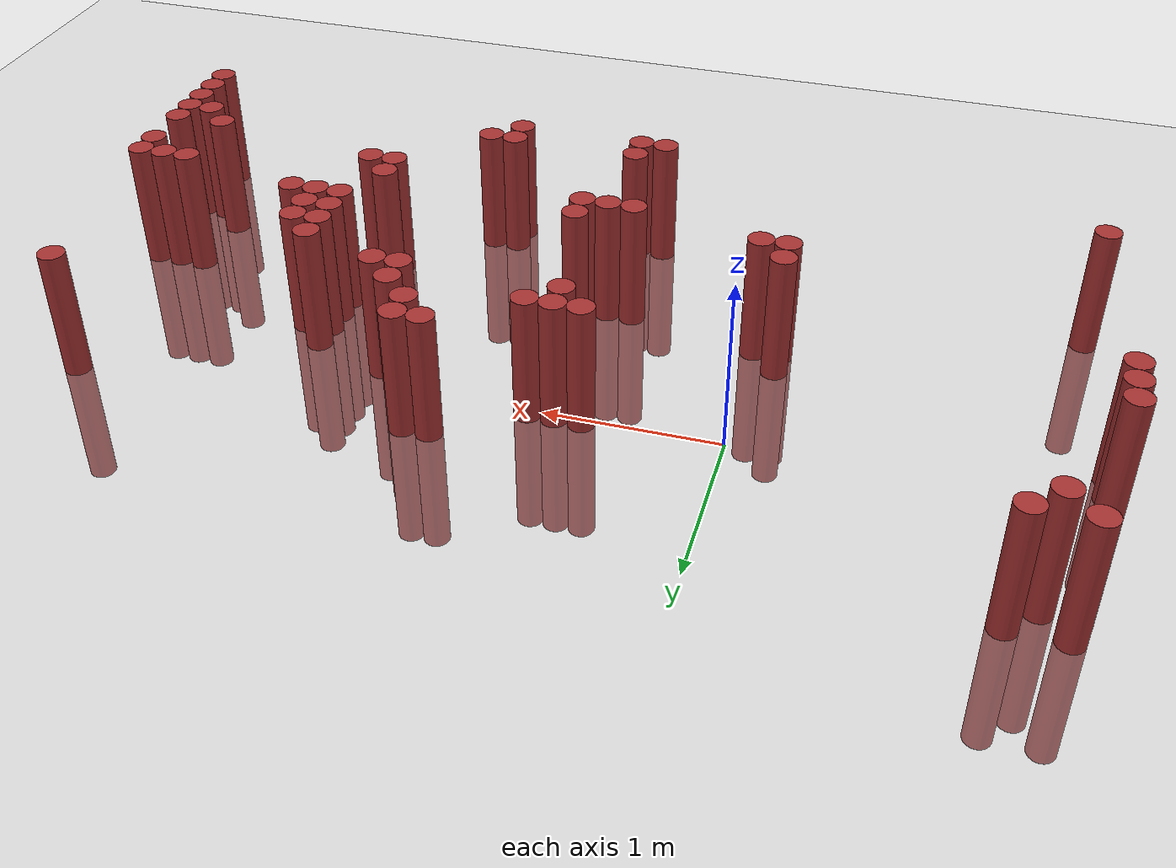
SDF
<sdf version="1.6">
 <world name="default">
  <model name="ground_plane">
   <static>1</static>
   <link name="link">
    <collision name="collision">
     <geometry><plane><normal>0 0 1</normal><size>100 100</size></plane></geometry>
     <surface><friction><ode><mu>100</mu><mu2>50</mu2></ode></friction></surface>
    </collision>
    <visual name="visual">
     <cast_shadows>0</cast_shadows>
     <geometry><plane><normal>0 0 1</normal><size>100 100</size></plane></geometry>
     <material>
      <script><uri>file://media/materials/scripts/gazebo.material</uri><name>Gazebo/Grey</name></script>
     </material>
    </visual>
   </link>
  </model>
  <model name="unit_cylinder_321">
   <static>1</static>
   <pose>-1.925000 -0.275000 0.000000 0.000000 0.000000 0.000000</pose>
   <link name="link">
    <inertial>
     <mass>1</mass>
     <inertia><ixx>0.145833</ixx><ixy>0</ixy><ixz>0</ixz><iyy>0.145833</iyy><iyz>0</iyz><izz>0.125</izz></inertia>
    </inertial>
    <collision name="collision">
     <geometry><cylinder><radius>0.075000</radius><length>1.5</length></cylinder></geometry>
    </collision>
    <visual name="visual">
     <geometry><cylinder><radius>0.075000</radius><length>1.5</length></cylinder></geometry>
     <material>
      <ambient>0.648000 0.192000 0.192000 1</ambient>
      <diffuse>0.648000 0.192000 0.192000 1</diffuse>
     </material>
     <material>
      <script><name>Gazebo/Grey</name><uri>file://media/materials/scripts/gazebo.material</uri></script>
     </material>
    </visual>
   </link>
  </model>
  <model name="unit_cylinder_322">
   <static>1</static>
   <pose>-1.925000 -0.125000 0.000000 0.000000 0.000000 0.000000</pose>
   <link name="link">
    <inertial>
     <mass>1</mass>
     <inertia><ixx>0.145833</ixx><ixy>0</ixy><ixz>0</ixz><iyy>0.145833</iyy><iyz>0</iyz><izz>0.125</izz></inertia>
    </inertial>
    <collision name="collision">
     <geometry><cylinder><radius>0.075000</radius><length>1.5</length></cylinder></geometry>
    </collision>
    <visual name="visual">
     <geometry><cylinder><radius>0.075000</radius><length>1.5</length></cylinder></geometry>
     <material>
      <ambient>0.648000 0.192000 0.192000 1</ambient>
      <diffuse>0.648000 0.192000 0.192000 1</diffuse>
     </material>
     <material>
      <script><name>Gazebo/Grey</name><uri>file://media/materials/scripts/gazebo.material</uri></script>
     </material>
    </visual>
   </link>
  </model>
  <model name="unit_cylinder_323">
   <static>1</static>
   <pose>-1.925000 0.025000 0.000000 0.000000 0.000000 0.000000</pose>
   <link name="link">
    <inertial>
     <mass>1</mass>
     <inertia><ixx>0.145833</ixx><ixy>0</ixy><ixz>0</ixz><iyy>0.145833</iyy><iyz>0</iyz><izz>0.125</izz></inertia>
    </inertial>
    <collision name="collision">
     <geometry><cylinder><radius>0.075000</radius><length>1.5</length></cylinder></geometry>
    </collision>
    <visual name="visual">
     <geometry><cylinder><radius>0.075000</radius><length>1.5</length></cylinder></geometry>
     <material>
      <ambient>0.648000 0.192000 0.192000 1</ambient>
      <diffuse>0.648000 0.192000 0.192000 1</diffuse>
     </material>
     <material>
      <script><name>Gazebo/Grey</name><uri>file://media/materials/scripts/gazebo.material</uri></script>
     </material>
    </visual>
   </link>
  </model>
  <model name="unit_cylinder_327">
   <static>1</static>
   <pose>-1.775000 -1.475000 0.000000 0.000000 0.000000 0.000000</pose>
   <link name="link">
    <inertial>
     <mass>1</mass>
     <inertia><ixx>0.145833</ixx><ixy>0</ixy><ixz>0</ixz><iyy>0.145833</iyy><iyz>0</iyz><izz>0.125</izz></inertia>
    </inertial>
    <collision name="collision">
     <geometry><cylinder><radius>0.075000</radius><length>1.5</length></cylinder></geometry>
    </collision>
    <visual name="visual">
     <geometry><cylinder><radius>0.075000</radius><length>1.5</length></cylinder></geometry>
     <material>
      <ambient>0.648000 0.192000 0.192000 1</ambient>
      <diffuse>0.648000 0.192000 0.192000 1</diffuse>
     </material>
     <material>
      <script><name>Gazebo/Grey</name><uri>file://media/materials/scripts/gazebo.material</uri></script>
     </material>
    </visual>
   </link>
  </model>
  <model name="unit_cylinder_328">
   <static>1</static>
   <pose>-1.775000 0.925000 0.000000 0.000000 0.000000 0.000000</pose>
   <link name="link">
    <inertial>
     <mass>1</mass>
     <inertia><ixx>0.145833</ixx><ixy>0</ixy><ixz>0</ixz><iyy>0.145833</iyy><iyz>0</iyz><izz>0.125</izz></inertia>
    </inertial>
    <collision name="collision">
     <geometry><cylinder><radius>0.075000</radius><length>1.5</length></cylinder></geometry>
    </collision>
    <visual name="visual">
     <geometry><cylinder><radius>0.075000</radius><length>1.5</length></cylinder></geometry>
     <material>
      <ambient>0.648000 0.192000 0.192000 1</ambient>
      <diffuse>0.648000 0.192000 0.192000 1</diffuse>
     </material>
     <material>
      <script><name>Gazebo/Grey</name><uri>file://media/materials/scripts/gazebo.material</uri></script>
     </material>
    </visual>
   </link>
  </model>
  <model name="unit_cylinder_329">
   <static>1</static>
   <pose>-1.625000 0.775000 0.000000 0.000000 0.000000 0.000000</pose>
   <link name="link">
    <inertial>
     <mass>1</mass>
     <inertia><ixx>0.145833</ixx><ixy>0</ixy><ixz>0</ixz><iyy>0.145833</iyy><iyz>0</iyz><izz>0.125</izz></inertia>
    </inertial>
    <collision name="collision">
     <geometry><cylinder><radius>0.075000</radius><length>1.5</length></cylinder></geometry>
    </collision>
    <visual name="visual">
     <geometry><cylinder><radius>0.075000</radius><length>1.5</length></cylinder></geometry>
     <material>
      <ambient>0.648000 0.192000 0.192000 1</ambient>
      <diffuse>0.648000 0.192000 0.192000 1</diffuse>
     </material>
     <material>
      <script><name>Gazebo/Grey</name><uri>file://media/materials/scripts/gazebo.material</uri></script>
     </material>
    </visual>
   </link>
  </model>
  <model name="unit_cylinder_334">
   <static>1</static>
   <pose>-1.475000 0.925000 0.000000 0.000000 0.000000 0.000000</pose>
   <link name="link">
    <inertial>
     <mass>1</mass>
     <inertia><ixx>0.145833</ixx><ixy>0</ixy><ixz>0</ixz><iyy>0.145833</iyy><iyz>0</iyz><izz>0.125</izz></inertia>
    </inertial>
    <collision name="collision">
     <geometry><cylinder><radius>0.075000</radius><length>1.5</length></cylinder></geometry>
    </collision>
    <visual name="visual">
     <geometry><cylinder><radius>0.075000</radius><length>1.5</length></cylinder></geometry>
     <material>
      <ambient>0.648000 0.192000 0.192000 1</ambient>
      <diffuse>0.648000 0.192000 0.192000 1</diffuse>
     </material>
     <material>
      <script><name>Gazebo/Grey</name><uri>file://media/materials/scripts/gazebo.material</uri></script>
     </material>
    </visual>
   </link>
  </model>
  <model name="unit_cylinder_373">
   <static>1</static>
   <pose>-0.125000 -0.875000 0.000000 0.000000 0.000000 0.000000</pose>
   <link name="link">
    <inertial>
     <mass>1</mass>
     <inertia><ixx>0.145833</ixx><ixy>0</ixy><ixz>0</ixz><iyy>0.145833</iyy><iyz>0</iyz><izz>0.125</izz></inertia>
    </inertial>
    <collision name="collision">
     <geometry><cylinder><radius>0.075000</radius><length>1.5</length></cylinder></geometry>
    </collision>
    <visual name="visual">
     <geometry><cylinder><radius>0.075000</radius><length>1.5</length></cylinder></geometry>
     <material>
      <ambient>0.648000 0.192000 0.192000 1</ambient>
      <diffuse>0.648000 0.192000 0.192000 1</diffuse>
     </material>
     <material>
      <script><name>Gazebo/Grey</name><uri>file://media/materials/scripts/gazebo.material</uri></script>
     </material>
    </visual>
   </link>
  </model>
  <model name="unit_cylinder_374">
   <static>1</static>
   <pose>-0.125000 -0.725000 0.000000 0.000000 0.000000 0.000000</pose>
   <link name="link">
    <inertial>
     <mass>1</mass>
     <inertia><ixx>0.145833</ixx><ixy>0</ixy><ixz>0</ixz><iyy>0.145833</iyy><iyz>0</iyz><izz>0.125</izz></inertia>
    </inertial>
    <collision name="collision">
     <geometry><cylinder><radius>0.075000</radius><length>1.5</length></cylinder></geometry>
    </collision>
    <visual name="visual">
     <geometry><cylinder><radius>0.075000</radius><length>1.5</length></cylinder></geometry>
     <material>
      <ambient>0.648000 0.192000 0.192000 1</ambient>
      <diffuse>0.648000 0.192000 0.192000 1</diffuse>
     </material>
     <material>
      <script><name>Gazebo/Grey</name><uri>file://media/materials/scripts/gazebo.material</uri></script>
     </material>
    </visual>
   </link>
  </model>
  <model name="unit_cylinder_375">
   <static>1</static>
   <pose>0.025000 -0.875000 0.000000 0.000000 0.000000 0.000000</pose>
   <link name="link">
    <inertial>
     <mass>1</mass>
     <inertia><ixx>0.145833</ixx><ixy>0</ixy><ixz>0</ixz><iyy>0.145833</iyy><iyz>0</iyz><izz>0.125</izz></inertia>
    </inertial>
    <collision name="collision">
     <geometry><cylinder><radius>0.075000</radius><length>1.5</length></cylinder></geometry>
    </collision>
    <visual name="visual">
     <geometry><cylinder><radius>0.075000</radius><length>1.5</length></cylinder></geometry>
     <material>
      <ambient>0.648000 0.192000 0.192000 1</ambient>
      <diffuse>0.648000 0.192000 0.192000 1</diffuse>
     </material>
     <material>
      <script><name>Gazebo/Grey</name><uri>file://media/materials/scripts/gazebo.material</uri></script>
     </material>
    </visual>
   </link>
  </model>
  <model name="unit_cylinder_386">
   <static>1</static>
   <pose>0.775000 -1.775000 0.000000 0.000000 0.000000 0.000000</pose>
   <link name="link">
    <inertial>
     <mass>1</mass>
     <inertia><ixx>0.145833</ixx><ixy>0</ixy><ixz>0</ixz><iyy>0.145833</iyy><iyz>0</iyz><izz>0.125</izz></inertia>
    </inertial>
    <collision name="collision">
     <geometry><cylinder><radius>0.075000</radius><length>1.5</length></cylinder></geometry>
    </collision>
    <visual name="visual">
     <geometry><cylinder><radius>0.075000</radius><length>1.5</length></cylinder></geometry>
     <material>
      <ambient>0.648000 0.192000 0.192000 1</ambient>
      <diffuse>0.648000 0.192000 0.192000 1</diffuse>
     </material>
     <material>
      <script><name>Gazebo/Grey</name><uri>file://media/materials/scripts/gazebo.material</uri></script>
     </material>
    </visual>
   </link>
  </model>
  <model name="unit_cylinder_387">
   <static>1</static>
   <pose>0.775000 -1.025000 0.000000 0.000000 0.000000 0.000000</pose>
   <link name="link">
    <inertial>
     <mass>1</mass>
     <inertia><ixx>0.145833</ixx><ixy>0</ixy><ixz>0</ixz><iyy>0.145833</iyy><iyz>0</iyz><izz>0.125</izz></inertia>
    </inertial>
    <collision name="collision">
     <geometry><cylinder><radius>0.075000</radius><length>1.5</length></cylinder></geometry>
    </collision>
    <visual name="visual">
     <geometry><cylinder><radius>0.075000</radius><length>1.5</length></cylinder></geometry>
     <material>
      <ambient>0.648000 0.192000 0.192000 1</ambient>
      <diffuse>0.648000 0.192000 0.192000 1</diffuse>
     </material>
     <material>
      <script><name>Gazebo/Grey</name><uri>file://media/materials/scripts/gazebo.material</uri></script>
     </material>
    </visual>
   </link>
  </model>
  <model name="unit_cylinder_388">
   <static>1</static>
   <pose>0.775000 0.025000 0.000000 0.000000 0.000000 0.000000</pose>
   <link name="link">
    <inertial>
     <mass>1</mass>
     <inertia><ixx>0.145833</ixx><ixy>0</ixy><ixz>0</ixz><iyy>0.145833</iyy><iyz>0</iyz><izz>0.125</izz></inertia>
    </inertial>
    <collision name="collision">
     <geometry><cylinder><radius>0.075000</radius><length>1.5</length></cylinder></geometry>
    </collision>
    <visual name="visual">
     <geometry><cylinder><radius>0.075000</radius><length>1.5</length></cylinder></geometry>
     <material>
      <ambient>0.648000 0.192000 0.192000 1</ambient>
      <diffuse>0.648000 0.192000 0.192000 1</diffuse>
     </material>
     <material>
      <script><name>Gazebo/Grey</name><uri>file://media/materials/scripts/gazebo.material</uri></script>
     </material>
    </visual>
   </link>
  </model>
  <model name="unit_cylinder_390">
   <static>1</static>
   <pose>0.925000 -1.775000 0.000000 0.000000 0.000000 0.000000</pose>
   <link name="link">
    <inertial>
     <mass>1</mass>
     <inertia><ixx>0.145833</ixx><ixy>0</ixy><ixz>0</ixz><iyy>0.145833</iyy><iyz>0</iyz><izz>0.125</izz></inertia>
    </inertial>
    <collision name="collision">
     <geometry><cylinder><radius>0.075000</radius><length>1.5</length></cylinder></geometry>
    </collision>
    <visual name="visual">
     <geometry><cylinder><radius>0.075000</radius><length>1.5</length></cylinder></geometry>
     <material>
      <ambient>0.648000 0.192000 0.192000 1</ambient>
      <diffuse>0.648000 0.192000 0.192000 1</diffuse>
     </material>
     <material>
      <script><name>Gazebo/Grey</name><uri>file://media/materials/scripts/gazebo.material</uri></script>
     </material>
    </visual>
   </link>
  </model>
  <model name="unit_cylinder_391">
   <static>1</static>
   <pose>0.925000 -1.625000 0.000000 0.000000 0.000000 0.000000</pose>
   <link name="link">
    <inertial>
     <mass>1</mass>
     <inertia><ixx>0.145833</ixx><ixy>0</ixy><ixz>0</ixz><iyy>0.145833</iyy><iyz>0</iyz><izz>0.125</izz></inertia>
    </inertial>
    <collision name="collision">
     <geometry><cylinder><radius>0.075000</radius><length>1.5</length></cylinder></geometry>
    </collision>
    <visual name="visual">
     <geometry><cylinder><radius>0.075000</radius><length>1.5</length></cylinder></geometry>
     <material>
      <ambient>0.648000 0.192000 0.192000 1</ambient>
      <diffuse>0.648000 0.192000 0.192000 1</diffuse>
     </material>
     <material>
      <script><name>Gazebo/Grey</name><uri>file://media/materials/scripts/gazebo.material</uri></script>
     </material>
    </visual>
   </link>
  </model>
  <model name="unit_cylinder_392">
   <static>1</static>
   <pose>0.925000 -1.025000 0.000000 0.000000 0.000000 0.000000</pose>
   <link name="link">
    <inertial>
     <mass>1</mass>
     <inertia><ixx>0.145833</ixx><ixy>0</ixy><ixz>0</ixz><iyy>0.145833</iyy><iyz>0</iyz><izz>0.125</izz></inertia>
    </inertial>
    <collision name="collision">
     <geometry><cylinder><radius>0.075000</radius><length>1.5</length></cylinder></geometry>
    </collision>
    <visual name="visual">
     <geometry><cylinder><radius>0.075000</radius><length>1.5</length></cylinder></geometry>
     <material>
      <ambient>0.648000 0.192000 0.192000 1</ambient>
      <diffuse>0.648000 0.192000 0.192000 1</diffuse>
     </material>
     <material>
      <script><name>Gazebo/Grey</name><uri>file://media/materials/scripts/gazebo.material</uri></script>
     </material>
    </visual>
   </link>
  </model>
  <model name="unit_cylinder_393">
   <static>1</static>
   <pose>0.925000 -0.125000 0.000000 0.000000 0.000000 0.000000</pose>
   <link name="link">
    <inertial>
     <mass>1</mass>
     <inertia><ixx>0.145833</ixx><ixy>0</ixy><ixz>0</ixz><iyy>0.145833</iyy><iyz>0</iyz><izz>0.125</izz></inertia>
    </inertial>
    <collision name="collision">
     <geometry><cylinder><radius>0.075000</radius><length>1.5</length></cylinder></geometry>
    </collision>
    <visual name="visual">
     <geometry><cylinder><radius>0.075000</radius><length>1.5</length></cylinder></geometry>
     <material>
      <ambient>0.648000 0.192000 0.192000 1</ambient>
      <diffuse>0.648000 0.192000 0.192000 1</diffuse>
     </material>
     <material>
      <script><name>Gazebo/Grey</name><uri>file://media/materials/scripts/gazebo.material</uri></script>
     </material>
    </visual>
   </link>
  </model>
  <model name="unit_cylinder_394">
   <static>1</static>
   <pose>0.925000 0.025000 0.000000 0.000000 0.000000 0.000000</pose>
   <link name="link">
    <inertial>
     <mass>1</mass>
     <inertia><ixx>0.145833</ixx><ixy>0</ixy><ixz>0</ixz><iyy>0.145833</iyy><iyz>0</iyz><izz>0.125</izz></inertia>
    </inertial>
    <collision name="collision">
     <geometry><cylinder><radius>0.075000</radius><length>1.5</length></cylinder></geometry>
    </collision>
    <visual name="visual">
     <geometry><cylinder><radius>0.075000</radius><length>1.5</length></cylinder></geometry>
     <material>
      <ambient>0.648000 0.192000 0.192000 1</ambient>
      <diffuse>0.648000 0.192000 0.192000 1</diffuse>
     </material>
     <material>
      <script><name>Gazebo/Grey</name><uri>file://media/materials/scripts/gazebo.material</uri></script>
     </material>
    </visual>
   </link>
  </model>
  <model name="unit_cylinder_395">
   <static>1</static>
   <pose>1.075000 -1.025000 0.000000 0.000000 0.000000 0.000000</pose>
   <link name="link">
    <inertial>
     <mass>1</mass>
     <inertia><ixx>0.145833</ixx><ixy>0</ixy><ixz>0</ixz><iyy>0.145833</iyy><iyz>0</iyz><izz>0.125</izz></inertia>
    </inertial>
    <collision name="collision">
     <geometry><cylinder><radius>0.075000</radius><length>1.5</length></cylinder></geometry>
    </collision>
    <visual name="visual">
     <geometry><cylinder><radius>0.075000</radius><length>1.5</length></cylinder></geometry>
     <material>
      <ambient>0.648000 0.192000 0.192000 1</ambient>
      <diffuse>0.648000 0.192000 0.192000 1</diffuse>
     </material>
     <material>
      <script><name>Gazebo/Grey</name><uri>file://media/materials/scripts/gazebo.material</uri></script>
     </material>
    </visual>
   </link>
  </model>
  <model name="unit_cylinder_396">
   <static>1</static>
   <pose>1.075000 -0.875000 0.000000 0.000000 0.000000 0.000000</pose>
   <link name="link">
    <inertial>
     <mass>1</mass>
     <inertia><ixx>0.145833</ixx><ixy>0</ixy><ixz>0</ixz><iyy>0.145833</iyy><iyz>0</iyz><izz>0.125</izz></inertia>
    </inertial>
    <collision name="collision">
     <geometry><cylinder><radius>0.075000</radius><length>1.5</length></cylinder></geometry>
    </collision>
    <visual name="visual">
     <geometry><cylinder><radius>0.075000</radius><length>1.5</length></cylinder></geometry>
     <material>
      <ambient>0.648000 0.192000 0.192000 1</ambient>
      <diffuse>0.648000 0.192000 0.192000 1</diffuse>
     </material>
     <material>
      <script><name>Gazebo/Grey</name><uri>file://media/materials/scripts/gazebo.material</uri></script>
     </material>
    </visual>
   </link>
  </model>
  <model name="unit_cylinder_397">
   <static>1</static>
   <pose>1.075000 0.025000 0.000000 0.000000 0.000000 0.000000</pose>
   <link name="link">
    <inertial>
     <mass>1</mass>
     <inertia><ixx>0.145833</ixx><ixy>0</ixy><ixz>0</ixz><iyy>0.145833</iyy><iyz>0</iyz><izz>0.125</izz></inertia>
    </inertial>
    <collision name="collision">
     <geometry><cylinder><radius>0.075000</radius><length>1.5</length></cylinder></geometry>
    </collision>
    <visual name="visual">
     <geometry><cylinder><radius>0.075000</radius><length>1.5</length></cylinder></geometry>
     <material>
      <ambient>0.648000 0.192000 0.192000 1</ambient>
      <diffuse>0.648000 0.192000 0.192000 1</diffuse>
     </material>
     <material>
      <script><name>Gazebo/Grey</name><uri>file://media/materials/scripts/gazebo.material</uri></script>
     </material>
    </visual>
   </link>
  </model>
  <model name="unit_cylinder_399">
   <static>1</static>
   <pose>1.525000 0.325000 0.000000 0.000000 0.000000 0.000000</pose>
   <link name="link">
    <inertial>
     <mass>1</mass>
     <inertia><ixx>0.145833</ixx><ixy>0</ixy><ixz>0</ixz><iyy>0.145833</iyy><iyz>0</iyz><izz>0.125</izz></inertia>
    </inertial>
    <collision name="collision">
     <geometry><cylinder><radius>0.075000</radius><length>1.5</length></cylinder></geometry>
    </collision>
    <visual name="visual">
     <geometry><cylinder><radius>0.075000</radius><length>1.5</length></cylinder></geometry>
     <material>
      <ambient>0.648000 0.192000 0.192000 1</ambient>
      <diffuse>0.648000 0.192000 0.192000 1</diffuse>
     </material>
     <material>
      <script><name>Gazebo/Grey</name><uri>file://media/materials/scripts/gazebo.material</uri></script>
     </material>
    </visual>
   </link>
  </model>
  <model name="unit_cylinder_404">
   <static>1</static>
   <pose>1.675000 -1.775000 0.000000 0.000000 0.000000 0.000000</pose>
   <link name="link">
    <inertial>
     <mass>1</mass>
     <inertia><ixx>0.145833</ixx><ixy>0</ixy><ixz>0</ixz><iyy>0.145833</iyy><iyz>0</iyz><izz>0.125</izz></inertia>
    </inertial>
    <collision name="collision">
     <geometry><cylinder><radius>0.075000</radius><length>1.5</length></cylinder></geometry>
    </collision>
    <visual name="visual">
     <geometry><cylinder><radius>0.075000</radius><length>1.5</length></cylinder></geometry>
     <material>
      <ambient>0.648000 0.192000 0.192000 1</ambient>
      <diffuse>0.648000 0.192000 0.192000 1</diffuse>
     </material>
     <material>
      <script><name>Gazebo/Grey</name><uri>file://media/materials/scripts/gazebo.material</uri></script>
     </material>
    </visual>
   </link>
  </model>
  <model name="unit_cylinder_405">
   <static>1</static>
   <pose>1.675000 -1.625000 0.000000 0.000000 0.000000 0.000000</pose>
   <link name="link">
    <inertial>
     <mass>1</mass>
     <inertia><ixx>0.145833</ixx><ixy>0</ixy><ixz>0</ixz><iyy>0.145833</iyy><iyz>0</iyz><izz>0.125</izz></inertia>
    </inertial>
    <collision name="collision">
     <geometry><cylinder><radius>0.075000</radius><length>1.5</length></cylinder></geometry>
    </collision>
    <visual name="visual">
     <geometry><cylinder><radius>0.075000</radius><length>1.5</length></cylinder></geometry>
     <material>
      <ambient>0.648000 0.192000 0.192000 1</ambient>
      <diffuse>0.648000 0.192000 0.192000 1</diffuse>
     </material>
     <material>
      <script><name>Gazebo/Grey</name><uri>file://media/materials/scripts/gazebo.material</uri></script>
     </material>
    </visual>
   </link>
  </model>
  <model name="unit_cylinder_406">
   <static>1</static>
   <pose>1.675000 0.175000 0.000000 0.000000 0.000000 0.000000</pose>
   <link name="link">
    <inertial>
     <mass>1</mass>
     <inertia><ixx>0.145833</ixx><ixy>0</ixy><ixz>0</ixz><iyy>0.145833</iyy><iyz>0</iyz><izz>0.125</izz></inertia>
    </inertial>
    <collision name="collision">
     <geometry><cylinder><radius>0.075000</radius><length>1.5</length></cylinder></geometry>
    </collision>
    <visual name="visual">
     <geometry><cylinder><radius>0.075000</radius><length>1.5</length></cylinder></geometry>
     <material>
      <ambient>0.648000 0.192000 0.192000 1</ambient>
      <diffuse>0.648000 0.192000 0.192000 1</diffuse>
     </material>
     <material>
      <script><name>Gazebo/Grey</name><uri>file://media/materials/scripts/gazebo.material</uri></script>
     </material>
    </visual>
   </link>
  </model>
  <model name="unit_cylinder_407">
   <static>1</static>
   <pose>1.675000 0.325000 0.000000 0.000000 0.000000 0.000000</pose>
   <link name="link">
    <inertial>
     <mass>1</mass>
     <inertia><ixx>0.145833</ixx><ixy>0</ixy><ixz>0</ixz><iyy>0.145833</iyy><iyz>0</iyz><izz>0.125</izz></inertia>
    </inertial>
    <collision name="collision">
     <geometry><cylinder><radius>0.075000</radius><length>1.5</length></cylinder></geometry>
    </collision>
    <visual name="visual">
     <geometry><cylinder><radius>0.075000</radius><length>1.5</length></cylinder></geometry>
     <material>
      <ambient>0.648000 0.192000 0.192000 1</ambient>
      <diffuse>0.648000 0.192000 0.192000 1</diffuse>
     </material>
     <material>
      <script><name>Gazebo/Grey</name><uri>file://media/materials/scripts/gazebo.material</uri></script>
     </material>
    </visual>
   </link>
  </model>
  <model name="unit_cylinder_410">
   <static>1</static>
   <pose>1.825000 -1.625000 0.000000 0.000000 0.000000 0.000000</pose>
   <link name="link">
    <inertial>
     <mass>1</mass>
     <inertia><ixx>0.145833</ixx><ixy>0</ixy><ixz>0</ixz><iyy>0.145833</iyy><iyz>0</iyz><izz>0.125</izz></inertia>
    </inertial>
    <collision name="collision">
     <geometry><cylinder><radius>0.075000</radius><length>1.5</length></cylinder></geometry>
    </collision>
    <visual name="visual">
     <geometry><cylinder><radius>0.075000</radius><length>1.5</length></cylinder></geometry>
     <material>
      <ambient>0.648000 0.192000 0.192000 1</ambient>
      <diffuse>0.648000 0.192000 0.192000 1</diffuse>
     </material>
     <material>
      <script><name>Gazebo/Grey</name><uri>file://media/materials/scripts/gazebo.material</uri></script>
     </material>
    </visual>
   </link>
  </model>
  <model name="unit_cylinder_411">
   <static>1</static>
   <pose>1.825000 -0.125000 0.000000 0.000000 0.000000 0.000000</pose>
   <link name="link">
    <inertial>
     <mass>1</mass>
     <inertia><ixx>0.145833</ixx><ixy>0</ixy><ixz>0</ixz><iyy>0.145833</iyy><iyz>0</iyz><izz>0.125</izz></inertia>
    </inertial>
    <collision name="collision">
     <geometry><cylinder><radius>0.075000</radius><length>1.5</length></cylinder></geometry>
    </collision>
    <visual name="visual">
     <geometry><cylinder><radius>0.075000</radius><length>1.5</length></cylinder></geometry>
     <material>
      <ambient>0.648000 0.192000 0.192000 1</ambient>
      <diffuse>0.648000 0.192000 0.192000 1</diffuse>
     </material>
     <material>
      <script><name>Gazebo/Grey</name><uri>file://media/materials/scripts/gazebo.material</uri></script>
     </material>
    </visual>
   </link>
  </model>
  <model name="unit_cylinder_412">
   <static>1</static>
   <pose>1.825000 0.025000 0.000000 0.000000 0.000000 0.000000</pose>
   <link name="link">
    <inertial>
     <mass>1</mass>
     <inertia><ixx>0.145833</ixx><ixy>0</ixy><ixz>0</ixz><iyy>0.145833</iyy><iyz>0</iyz><izz>0.125</izz></inertia>
    </inertial>
    <collision name="collision">
     <geometry><cylinder><radius>0.075000</radius><length>1.5</length></cylinder></geometry>
    </collision>
    <visual name="visual">
     <geometry><cylinder><radius>0.075000</radius><length>1.5</length></cylinder></geometry>
     <material>
      <ambient>0.648000 0.192000 0.192000 1</ambient>
      <diffuse>0.648000 0.192000 0.192000 1</diffuse>
     </material>
     <material>
      <script><name>Gazebo/Grey</name><uri>file://media/materials/scripts/gazebo.material</uri></script>
     </material>
    </visual>
   </link>
  </model>
  <model name="unit_cylinder_414">
   <static>1</static>
   <pose>1.975000 -0.125000 0.000000 0.000000 0.000000 0.000000</pose>
   <link name="link">
    <inertial>
     <mass>1</mass>
     <inertia><ixx>0.145833</ixx><ixy>0</ixy><ixz>0</ixz><iyy>0.145833</iyy><iyz>0</iyz><izz>0.125</izz></inertia>
    </inertial>
    <collision name="collision">
     <geometry><cylinder><radius>0.075000</radius><length>1.5</length></cylinder></geometry>
    </collision>
    <visual name="visual">
     <geometry><cylinder><radius>0.075000</radius><length>1.5</length></cylinder></geometry>
     <material>
      <ambient>0.648000 0.192000 0.192000 1</ambient>
      <diffuse>0.648000 0.192000 0.192000 1</diffuse>
     </material>
     <material>
      <script><name>Gazebo/Grey</name><uri>file://media/materials/scripts/gazebo.material</uri></script>
     </material>
    </visual>
   </link>
  </model>
  <model name="unit_cylinder_416">
   <static>1</static>
   <pose>2.275000 -1.175000 0.000000 0.000000 0.000000 0.000000</pose>
   <link name="link">
    <inertial>
     <mass>1</mass>
     <inertia><ixx>0.145833</ixx><ixy>0</ixy><ixz>0</ixz><iyy>0.145833</iyy><iyz>0</iyz><izz>0.125</izz></inertia>
    </inertial>
    <collision name="collision">
     <geometry><cylinder><radius>0.075000</radius><length>1.5</length></cylinder></geometry>
    </collision>
    <visual name="visual">
     <geometry><cylinder><radius>0.075000</radius><length>1.5</length></cylinder></geometry>
     <material>
      <ambient>0.648000 0.192000 0.192000 1</ambient>
      <diffuse>0.648000 0.192000 0.192000 1</diffuse>
     </material>
     <material>
      <script><name>Gazebo/Grey</name><uri>file://media/materials/scripts/gazebo.material</uri></script>
     </material>
    </visual>
   </link>
  </model>
  <model name="unit_cylinder_417">
   <static>1</static>
   <pose>2.275000 -1.025000 0.000000 0.000000 0.000000 0.000000</pose>
   <link name="link">
    <inertial>
     <mass>1</mass>
     <inertia><ixx>0.145833</ixx><ixy>0</ixy><ixz>0</ixz><iyy>0.145833</iyy><iyz>0</iyz><izz>0.125</izz></inertia>
    </inertial>
    <collision name="collision">
     <geometry><cylinder><radius>0.075000</radius><length>1.5</length></cylinder></geometry>
    </collision>
    <visual name="visual">
     <geometry><cylinder><radius>0.075000</radius><length>1.5</length></cylinder></geometry>
     <material>
      <ambient>0.648000 0.192000 0.192000 1</ambient>
      <diffuse>0.648000 0.192000 0.192000 1</diffuse>
     </material>
     <material>
      <script><name>Gazebo/Grey</name><uri>file://media/materials/scripts/gazebo.material</uri></script>
     </material>
    </visual>
   </link>
  </model>
  <model name="unit_cylinder_420">
   <static>1</static>
   <pose>2.425000 -1.175000 0.000000 0.000000 0.000000 0.000000</pose>
   <link name="link">
    <inertial>
     <mass>1</mass>
     <inertia><ixx>0.145833</ixx><ixy>0</ixy><ixz>0</ixz><iyy>0.145833</iyy><iyz>0</iyz><izz>0.125</izz></inertia>
    </inertial>
    <collision name="collision">
     <geometry><cylinder><radius>0.075000</radius><length>1.5</length></cylinder></geometry>
    </collision>
    <visual name="visual">
     <geometry><cylinder><radius>0.075000</radius><length>1.5</length></cylinder></geometry>
     <material>
      <ambient>0.648000 0.192000 0.192000 1</ambient>
      <diffuse>0.648000 0.192000 0.192000 1</diffuse>
     </material>
     <material>
      <script><name>Gazebo/Grey</name><uri>file://media/materials/scripts/gazebo.material</uri></script>
     </material>
    </visual>
   </link>
  </model>
  <model name="unit_cylinder_421">
   <static>1</static>
   <pose>2.425000 -0.725000 0.000000 0.000000 0.000000 0.000000</pose>
   <link name="link">
    <inertial>
     <mass>1</mass>
     <inertia><ixx>0.145833</ixx><ixy>0</ixy><ixz>0</ixz><iyy>0.145833</iyy><iyz>0</iyz><izz>0.125</izz></inertia>
    </inertial>
    <collision name="collision">
     <geometry><cylinder><radius>0.075000</radius><length>1.5</length></cylinder></geometry>
    </collision>
    <visual name="visual">
     <geometry><cylinder><radius>0.075000</radius><length>1.5</length></cylinder></geometry>
     <material>
      <ambient>0.648000 0.192000 0.192000 1</ambient>
      <diffuse>0.648000 0.192000 0.192000 1</diffuse>
     </material>
     <material>
      <script><name>Gazebo/Grey</name><uri>file://media/materials/scripts/gazebo.material</uri></script>
     </material>
    </visual>
   </link>
  </model>
  <model name="unit_cylinder_422">
   <static>1</static>
   <pose>2.425000 -0.575000 0.000000 0.000000 0.000000 0.000000</pose>
   <link name="link">
    <inertial>
     <mass>1</mass>
     <inertia><ixx>0.145833</ixx><ixy>0</ixy><ixz>0</ixz><iyy>0.145833</iyy><iyz>0</iyz><izz>0.125</izz></inertia>
    </inertial>
    <collision name="collision">
     <geometry><cylinder><radius>0.075000</radius><length>1.5</length></cylinder></geometry>
    </collision>
    <visual name="visual">
     <geometry><cylinder><radius>0.075000</radius><length>1.5</length></cylinder></geometry>
     <material>
      <ambient>0.648000 0.192000 0.192000 1</ambient>
      <diffuse>0.648000 0.192000 0.192000 1</diffuse>
     </material>
     <material>
      <script><name>Gazebo/Grey</name><uri>file://media/materials/scripts/gazebo.material</uri></script>
     </material>
    </visual>
   </link>
  </model>
  <model name="unit_cylinder_423">
   <static>1</static>
   <pose>2.425000 -0.425000 0.000000 0.000000 0.000000 0.000000</pose>
   <link name="link">
    <inertial>
     <mass>1</mass>
     <inertia><ixx>0.145833</ixx><ixy>0</ixy><ixz>0</ixz><iyy>0.145833</iyy><iyz>0</iyz><izz>0.125</izz></inertia>
    </inertial>
    <collision name="collision">
     <geometry><cylinder><radius>0.075000</radius><length>1.5</length></cylinder></geometry>
    </collision>
    <visual name="visual">
     <geometry><cylinder><radius>0.075000</radius><length>1.5</length></cylinder></geometry>
     <material>
      <ambient>0.648000 0.192000 0.192000 1</ambient>
      <diffuse>0.648000 0.192000 0.192000 1</diffuse>
     </material>
     <material>
      <script><name>Gazebo/Grey</name><uri>file://media/materials/scripts/gazebo.material</uri></script>
     </material>
    </visual>
   </link>
  </model>
  <model name="unit_cylinder_424">
   <static>1</static>
   <pose>2.425000 -0.275000 0.000000 0.000000 0.000000 0.000000</pose>
   <link name="link">
    <inertial>
     <mass>1</mass>
     <inertia><ixx>0.145833</ixx><ixy>0</ixy><ixz>0</ixz><iyy>0.145833</iyy><iyz>0</iyz><izz>0.125</izz></inertia>
    </inertial>
    <collision name="collision">
     <geometry><cylinder><radius>0.075000</radius><length>1.5</length></cylinder></geometry>
    </collision>
    <visual name="visual">
     <geometry><cylinder><radius>0.075000</radius><length>1.5</length></cylinder></geometry>
     <material>
      <ambient>0.648000 0.192000 0.192000 1</ambient>
      <diffuse>0.648000 0.192000 0.192000 1</diffuse>
     </material>
     <material>
      <script><name>Gazebo/Grey</name><uri>file://media/materials/scripts/gazebo.material</uri></script>
     </material>
    </visual>
   </link>
  </model>
  <model name="unit_cylinder_425">
   <static>1</static>
   <pose>2.575000 -0.725000 0.000000 0.000000 0.000000 0.000000</pose>
   <link name="link">
    <inertial>
     <mass>1</mass>
     <inertia><ixx>0.145833</ixx><ixy>0</ixy><ixz>0</ixz><iyy>0.145833</iyy><iyz>0</iyz><izz>0.125</izz></inertia>
    </inertial>
    <collision name="collision">
     <geometry><cylinder><radius>0.075000</radius><length>1.5</length></cylinder></geometry>
    </collision>
    <visual name="visual">
     <geometry><cylinder><radius>0.075000</radius><length>1.5</length></cylinder></geometry>
     <material>
      <ambient>0.648000 0.192000 0.192000 1</ambient>
      <diffuse>0.648000 0.192000 0.192000 1</diffuse>
     </material>
     <material>
      <script><name>Gazebo/Grey</name><uri>file://media/materials/scripts/gazebo.material</uri></script>
     </material>
    </visual>
   </link>
  </model>
  <model name="unit_cylinder_426">
   <static>1</static>
   <pose>2.575000 -0.575000 0.000000 0.000000 0.000000 0.000000</pose>
   <link name="link">
    <inertial>
     <mass>1</mass>
     <inertia><ixx>0.145833</ixx><ixy>0</ixy><ixz>0</ixz><iyy>0.145833</iyy><iyz>0</iyz><izz>0.125</izz></inertia>
    </inertial>
    <collision name="collision">
     <geometry><cylinder><radius>0.075000</radius><length>1.5</length></cylinder></geometry>
    </collision>
    <visual name="visual">
     <geometry><cylinder><radius>0.075000</radius><length>1.5</length></cylinder></geometry>
     <material>
      <ambient>0.648000 0.192000 0.192000 1</ambient>
      <diffuse>0.648000 0.192000 0.192000 1</diffuse>
     </material>
     <material>
      <script><name>Gazebo/Grey</name><uri>file://media/materials/scripts/gazebo.material</uri></script>
     </material>
    </visual>
   </link>
  </model>
  <model name="unit_cylinder_427">
   <static>1</static>
   <pose>2.575000 -0.425000 0.000000 0.000000 0.000000 0.000000</pose>
   <link name="link">
    <inertial>
     <mass>1</mass>
     <inertia><ixx>0.145833</ixx><ixy>0</ixy><ixz>0</ixz><iyy>0.145833</iyy><iyz>0</iyz><izz>0.125</izz></inertia>
    </inertial>
    <collision name="collision">
     <geometry><cylinder><radius>0.075000</radius><length>1.5</length></cylinder></geometry>
    </collision>
    <visual name="visual">
     <geometry><cylinder><radius>0.075000</radius><length>1.5</length></cylinder></geometry>
     <material>
      <ambient>0.648000 0.192000 0.192000 1</ambient>
      <diffuse>0.648000 0.192000 0.192000 1</diffuse>
     </material>
     <material>
      <script><name>Gazebo/Grey</name><uri>file://media/materials/scripts/gazebo.material</uri></script>
     </material>
    </visual>
   </link>
  </model>
  <model name="unit_cylinder_428">
   <static>1</static>
   <pose>2.725000 -0.725000 0.000000 0.000000 0.000000 0.000000</pose>
   <link name="link">
    <inertial>
     <mass>1</mass>
     <inertia><ixx>0.145833</ixx><ixy>0</ixy><ixz>0</ixz><iyy>0.145833</iyy><iyz>0</iyz><izz>0.125</izz></inertia>
    </inertial>
    <collision name="collision">
     <geometry><cylinder><radius>0.075000</radius><length>1.5</length></cylinder></geometry>
    </collision>
    <visual name="visual">
     <geometry><cylinder><radius>0.075000</radius><length>1.5</length></cylinder></geometry>
     <material>
      <ambient>0.648000 0.192000 0.192000 1</ambient>
      <diffuse>0.648000 0.192000 0.192000 1</diffuse>
     </material>
     <material>
      <script><name>Gazebo/Grey</name><uri>file://media/materials/scripts/gazebo.material</uri></script>
     </material>
    </visual>
   </link>
  </model>
  <model name="unit_cylinder_437">
   <static>1</static>
   <pose>3.475000 -1.325000 0.000000 0.000000 0.000000 0.000000</pose>
   <link name="link">
    <inertial>
     <mass>1</mass>
     <inertia><ixx>0.145833</ixx><ixy>0</ixy><ixz>0</ixz><iyy>0.145833</iyy><iyz>0</iyz><izz>0.125</izz></inertia>
    </inertial>
    <collision name="collision">
     <geometry><cylinder><radius>0.075000</radius><length>1.5</length></cylinder></geometry>
    </collision>
    <visual name="visual">
     <geometry><cylinder><radius>0.075000</radius><length>1.5</length></cylinder></geometry>
     <material>
      <ambient>0.648000 0.192000 0.192000 1</ambient>
      <diffuse>0.648000 0.192000 0.192000 1</diffuse>
     </material>
     <material>
      <script><name>Gazebo/Grey</name><uri>file://media/materials/scripts/gazebo.material</uri></script>
     </material>
    </visual>
   </link>
  </model>
  <model name="unit_cylinder_438">
   <static>1</static>
   <pose>3.475000 -0.875000 0.000000 0.000000 0.000000 0.000000</pose>
   <link name="link">
    <inertial>
     <mass>1</mass>
     <inertia><ixx>0.145833</ixx><ixy>0</ixy><ixz>0</ixz><iyy>0.145833</iyy><iyz>0</iyz><izz>0.125</izz></inertia>
    </inertial>
    <collision name="collision">
     <geometry><cylinder><radius>0.075000</radius><length>1.5</length></cylinder></geometry>
    </collision>
    <visual name="visual">
     <geometry><cylinder><radius>0.075000</radius><length>1.5</length></cylinder></geometry>
     <material>
      <ambient>0.648000 0.192000 0.192000 1</ambient>
      <diffuse>0.648000 0.192000 0.192000 1</diffuse>
     </material>
     <material>
      <script><name>Gazebo/Grey</name><uri>file://media/materials/scripts/gazebo.material</uri></script>
     </material>
    </visual>
   </link>
  </model>
  <model name="unit_cylinder_445">
   <static>1</static>
   <pose>3.625000 -1.475000 0.000000 0.000000 0.000000 0.000000</pose>
   <link name="link">
    <inertial>
     <mass>1</mass>
     <inertia><ixx>0.145833</ixx><ixy>0</ixy><ixz>0</ixz><iyy>0.145833</iyy><iyz>0</iyz><izz>0.125</izz></inertia>
    </inertial>
    <collision name="collision">
     <geometry><cylinder><radius>0.075000</radius><length>1.5</length></cylinder></geometry>
    </collision>
    <visual name="visual">
     <geometry><cylinder><radius>0.075000</radius><length>1.5</length></cylinder></geometry>
     <material>
      <ambient>0.648000 0.192000 0.192000 1</ambient>
      <diffuse>0.648000 0.192000 0.192000 1</diffuse>
     </material>
     <material>
      <script><name>Gazebo/Grey</name><uri>file://media/materials/scripts/gazebo.material</uri></script>
     </material>
    </visual>
   </link>
  </model>
  <model name="unit_cylinder_446">
   <static>1</static>
   <pose>3.625000 -0.875000 0.000000 0.000000 0.000000 0.000000</pose>
   <link name="link">
    <inertial>
     <mass>1</mass>
     <inertia><ixx>0.145833</ixx><ixy>0</ixy><ixz>0</ixz><iyy>0.145833</iyy><iyz>0</iyz><izz>0.125</izz></inertia>
    </inertial>
    <collision name="collision">
     <geometry><cylinder><radius>0.075000</radius><length>1.5</length></cylinder></geometry>
    </collision>
    <visual name="visual">
     <geometry><cylinder><radius>0.075000</radius><length>1.5</length></cylinder></geometry>
     <material>
      <ambient>0.648000 0.192000 0.192000 1</ambient>
      <diffuse>0.648000 0.192000 0.192000 1</diffuse>
     </material>
     <material>
      <script><name>Gazebo/Grey</name><uri>file://media/materials/scripts/gazebo.material</uri></script>
     </material>
    </visual>
   </link>
  </model>
  <model name="unit_cylinder_447">
   <static>1</static>
   <pose>3.625000 0.325000 0.000000 0.000000 0.000000 0.000000</pose>
   <link name="link">
    <inertial>
     <mass>1</mass>
     <inertia><ixx>0.145833</ixx><ixy>0</ixy><ixz>0</ixz><iyy>0.145833</iyy><iyz>0</iyz><izz>0.125</izz></inertia>
    </inertial>
    <collision name="collision">
     <geometry><cylinder><radius>0.075000</radius><length>1.5</length></cylinder></geometry>
    </collision>
    <visual name="visual">
     <geometry><cylinder><radius>0.075000</radius><length>1.5</length></cylinder></geometry>
     <material>
      <ambient>0.648000 0.192000 0.192000 1</ambient>
      <diffuse>0.648000 0.192000 0.192000 1</diffuse>
     </material>
     <material>
      <script><name>Gazebo/Grey</name><uri>file://media/materials/scripts/gazebo.material</uri></script>
     </material>
    </visual>
   </link>
  </model>
  <model name="unit_cylinder_455">
   <static>1</static>
   <pose>3.775000 -1.925000 0.000000 0.000000 0.000000 0.000000</pose>
   <link name="link">
    <inertial>
     <mass>1</mass>
     <inertia><ixx>0.145833</ixx><ixy>0</ixy><ixz>0</ixz><iyy>0.145833</iyy><iyz>0</iyz><izz>0.125</izz></inertia>
    </inertial>
    <collision name="collision">
     <geometry><cylinder><radius>0.075000</radius><length>1.5</length></cylinder></geometry>
    </collision>
    <visual name="visual">
     <geometry><cylinder><radius>0.075000</radius><length>1.5</length></cylinder></geometry>
     <material>
      <ambient>0.648000 0.192000 0.192000 1</ambient>
      <diffuse>0.648000 0.192000 0.192000 1</diffuse>
     </material>
     <material>
      <script><name>Gazebo/Grey</name><uri>file://media/materials/scripts/gazebo.material</uri></script>
     </material>
    </visual>
   </link>
  </model>
  <model name="unit_cylinder_456">
   <static>1</static>
   <pose>3.775000 -1.775000 0.000000 0.000000 0.000000 0.000000</pose>
   <link name="link">
    <inertial>
     <mass>1</mass>
     <inertia><ixx>0.145833</ixx><ixy>0</ixy><ixz>0</ixz><iyy>0.145833</iyy><iyz>0</iyz><izz>0.125</izz></inertia>
    </inertial>
    <collision name="collision">
     <geometry><cylinder><radius>0.075000</radius><length>1.5</length></cylinder></geometry>
    </collision>
    <visual name="visual">
     <geometry><cylinder><radius>0.075000</radius><length>1.5</length></cylinder></geometry>
     <material>
      <ambient>0.648000 0.192000 0.192000 1</ambient>
      <diffuse>0.648000 0.192000 0.192000 1</diffuse>
     </material>
     <material>
      <script><name>Gazebo/Grey</name><uri>file://media/materials/scripts/gazebo.material</uri></script>
     </material>
    </visual>
   </link>
  </model>
  <model name="unit_cylinder_457">
   <static>1</static>
   <pose>3.775000 -1.625000 0.000000 0.000000 0.000000 0.000000</pose>
   <link name="link">
    <inertial>
     <mass>1</mass>
     <inertia><ixx>0.145833</ixx><ixy>0</ixy><ixz>0</ixz><iyy>0.145833</iyy><iyz>0</iyz><izz>0.125</izz></inertia>
    </inertial>
    <collision name="collision">
     <geometry><cylinder><radius>0.075000</radius><length>1.5</length></cylinder></geometry>
    </collision>
    <visual name="visual">
     <geometry><cylinder><radius>0.075000</radius><length>1.5</length></cylinder></geometry>
     <material>
      <ambient>0.648000 0.192000 0.192000 1</ambient>
      <diffuse>0.648000 0.192000 0.192000 1</diffuse>
     </material>
     <material>
      <script><name>Gazebo/Grey</name><uri>file://media/materials/scripts/gazebo.material</uri></script>
     </material>
    </visual>
   </link>
  </model>
  <model name="unit_cylinder_458">
   <static>1</static>
   <pose>3.775000 -1.475000 0.000000 0.000000 0.000000 0.000000</pose>
   <link name="link">
    <inertial>
     <mass>1</mass>
     <inertia><ixx>0.145833</ixx><ixy>0</ixy><ixz>0</ixz><iyy>0.145833</iyy><iyz>0</iyz><izz>0.125</izz></inertia>
    </inertial>
    <collision name="collision">
     <geometry><cylinder><radius>0.075000</radius><length>1.5</length></cylinder></geometry>
    </collision>
    <visual name="visual">
     <geometry><cylinder><radius>0.075000</radius><length>1.5</length></cylinder></geometry>
     <material>
      <ambient>0.648000 0.192000 0.192000 1</ambient>
      <diffuse>0.648000 0.192000 0.192000 1</diffuse>
     </material>
     <material>
      <script><name>Gazebo/Grey</name><uri>file://media/materials/scripts/gazebo.material</uri></script>
     </material>
    </visual>
   </link>
  </model>
  <model name="unit_cylinder_459">
   <static>1</static>
   <pose>3.775000 -1.325000 0.000000 0.000000 0.000000 0.000000</pose>
   <link name="link">
    <inertial>
     <mass>1</mass>
     <inertia><ixx>0.145833</ixx><ixy>0</ixy><ixz>0</ixz><iyy>0.145833</iyy><iyz>0</iyz><izz>0.125</izz></inertia>
    </inertial>
    <collision name="collision">
     <geometry><cylinder><radius>0.075000</radius><length>1.5</length></cylinder></geometry>
    </collision>
    <visual name="visual">
     <geometry><cylinder><radius>0.075000</radius><length>1.5</length></cylinder></geometry>
     <material>
      <ambient>0.648000 0.192000 0.192000 1</ambient>
      <diffuse>0.648000 0.192000 0.192000 1</diffuse>
     </material>
     <material>
      <script><name>Gazebo/Grey</name><uri>file://media/materials/scripts/gazebo.material</uri></script>
     </material>
    </visual>
   </link>
  </model>
  <model name="unit_cylinder_460">
   <static>1</static>
   <pose>3.775000 -1.025000 0.000000 0.000000 0.000000 0.000000</pose>
   <link name="link">
    <inertial>
     <mass>1</mass>
     <inertia><ixx>0.145833</ixx><ixy>0</ixy><ixz>0</ixz><iyy>0.145833</iyy><iyz>0</iyz><izz>0.125</izz></inertia>
    </inertial>
    <collision name="collision">
     <geometry><cylinder><radius>0.075000</radius><length>1.5</length></cylinder></geometry>
    </collision>
    <visual name="visual">
     <geometry><cylinder><radius>0.075000</radius><length>1.5</length></cylinder></geometry>
     <material>
      <ambient>0.648000 0.192000 0.192000 1</ambient>
      <diffuse>0.648000 0.192000 0.192000 1</diffuse>
     </material>
     <material>
      <script><name>Gazebo/Grey</name><uri>file://media/materials/scripts/gazebo.material</uri></script>
     </material>
    </visual>
   </link>
  </model>
  <model name="unit_cylinder_461">
   <static>1</static>
   <pose>3.775000 -0.875000 0.000000 0.000000 0.000000 0.000000</pose>
   <link name="link">
    <inertial>
     <mass>1</mass>
     <inertia><ixx>0.145833</ixx><ixy>0</ixy><ixz>0</ixz><iyy>0.145833</iyy><iyz>0</iyz><izz>0.125</izz></inertia>
    </inertial>
    <collision name="collision">
     <geometry><cylinder><radius>0.075000</radius><length>1.5</length></cylinder></geometry>
    </collision>
    <visual name="visual">
     <geometry><cylinder><radius>0.075000</radius><length>1.5</length></cylinder></geometry>
     <material>
      <ambient>0.648000 0.192000 0.192000 1</ambient>
      <diffuse>0.648000 0.192000 0.192000 1</diffuse>
     </material>
     <material>
      <script><name>Gazebo/Grey</name><uri>file://media/materials/scripts/gazebo.material</uri></script>
     </material>
    </visual>
   </link>
  </model>
 </world>
</sdf>
